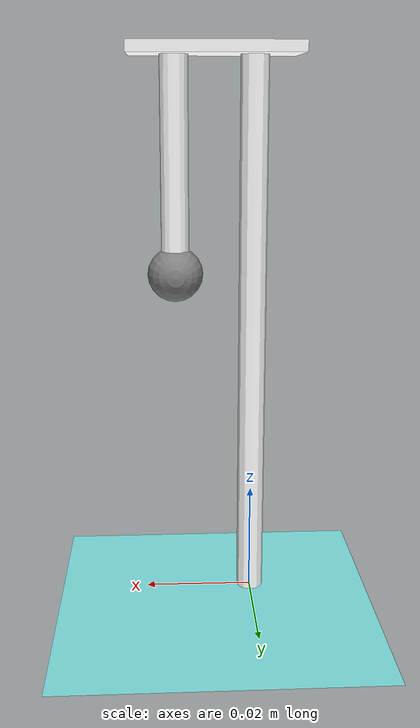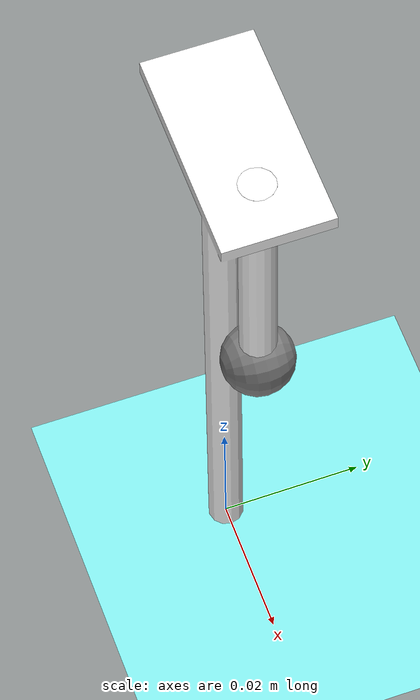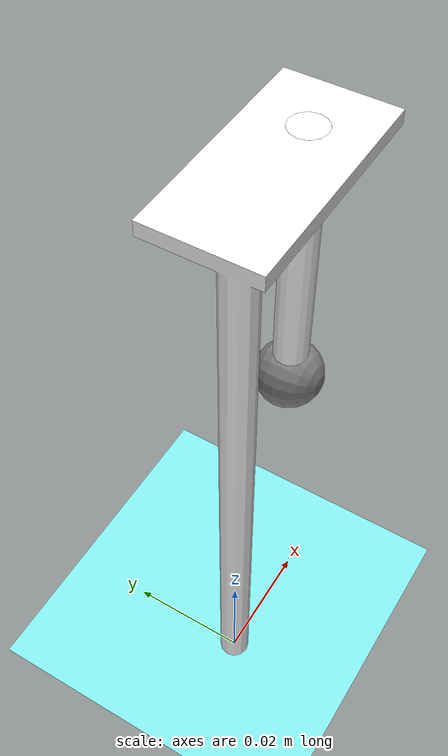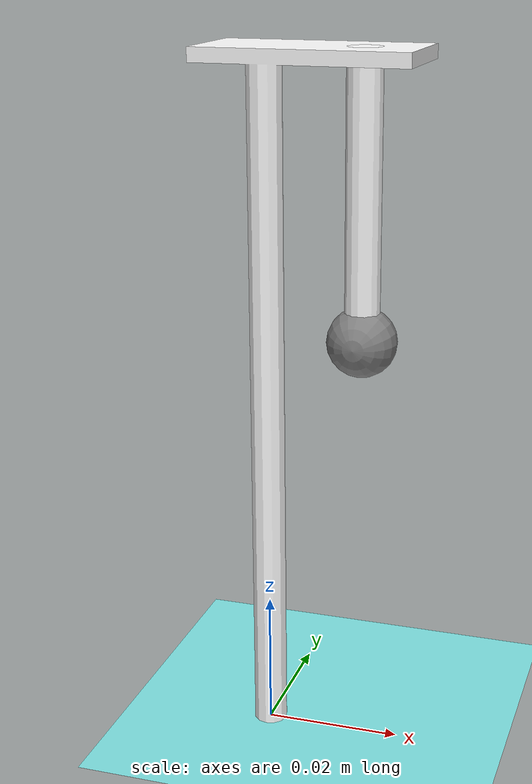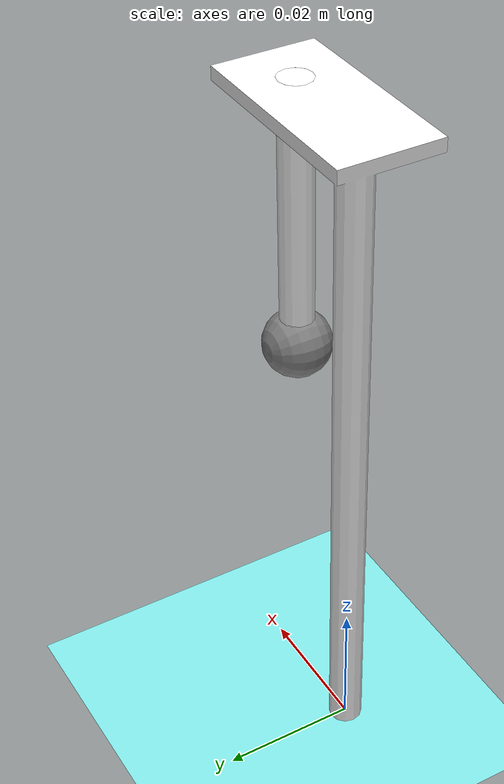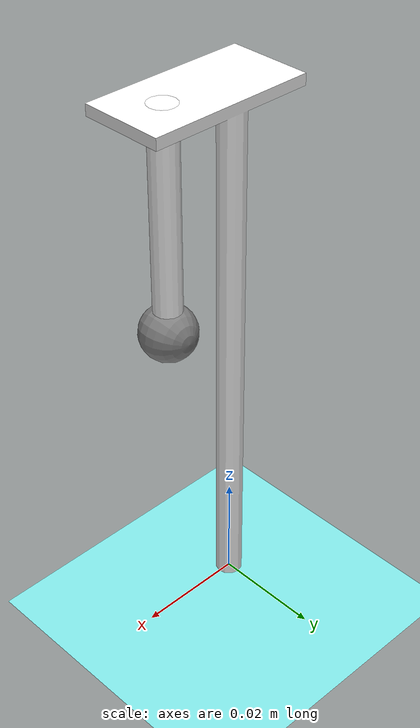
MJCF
<mujoco model="force_control">
     <compiler angle="radian" meshdir="./meshes/" />
    <size njmax="500" nconmax="100" />
    <option gravity='0 0 -9.806' iterations='50' solver='Newton' timestep='0.002'/>

    <default>
        <geom contype="1" conaffinity="1" friction="0.6 0.3 0.3" rgba="0.5 0.6 0.7 1" margin="0.001" group="0"/>

        <light castshadow="false" diffuse="1 1 1"/>
        <motor ctrlrange="-0 200" ctrllimited="true"/>
        <camera fovy="60"/>
        <joint damping="0.01" armature="0.01"/>

    </default>
    <asset>
        <mesh name="base" file="base.STL"/>
        <mesh name="link1" file="link1.STL"/>
    </asset>

    <asset>
        <texture type="skybox" builtin="gradient" rgb1="0.3 0.5 0.7" rgb2="0 0 0" width="512" height="512"/>
        <texture name="plane" type="2d" builtin="flat" rgb1=".2 .3 .4" rgb2=".1 0.15 0.2" width="512" height="512" mark="cross" markrgb="0 0 0"/>
        <material name="plane" reflectance="0.0" texture="plane" texrepeat="3 3" texuniform="true"/>
    </asset>

     <visual>
        <map force="0.1" zfar="30"/>
        <rgba haze="0.15 0.25 0.35 1"/>
        <quality shadowsize="2048"/>
        <global offwidth="800" offheight="800"/>
    </visual>

    <worldbody>
        <light directional="true" diffuse=".8 .8 .8" pos="0 0 10" dir="0 0 -10"/>
        <camera name="track" mode="trackcom" pos="0 -1.3 1.6" xyaxes="1 0 0 0 0.707 0.707"/>
        <geom name='floor' type='plane' conaffinity='1' condim='3' contype='1' rgba="0.5 0.9 0.9 0.1" material='plane' pos='0 0 0' size='0 0 1'/>
        <body name="base" pos="0. 0 0" quat="0 0 0 0">
            <inertial pos="0.02 0 0" quat="0.5 0.5 0.5 0.5" mass="0.05" diaginertia="1.0595e-07 1.0595e-07 2.4544e-09"/>
            <geom name='base' type="mesh" contype="0" conaffinity="0" group="1" rgba="1 1 1 1" mesh="base"/>
            <geom type="mesh" rgba="1 1 1 1" mesh="base"/>

            <body name="link1" pos="0.014 0 0.062" quat="0.499998 0.5 -0.5 0.500002">
                <inertial pos="0.02 0 0" quat="0.5 0.5 0.5 0.5" mass="0.1" diaginertia="1.0595e-07 1.0595e-07 2.4544e-09"/>
                <joint name="joint1" pos="0 0 0" axis="1 0 0" type="slide"/>
                <geom name='link1' type="mesh" contype="0" conaffinity="0" group="1" rgba="1 1 1 1" mesh="link1"/>
                <geom type="mesh" rgba="1 1 1 1" mesh="link1"/>
                <site name="force_sensor_site" pos="0 0 0"/>
            </body>
        </body>
    </worldbody>

    <contact>
        <exclude name="exclude_base_link1" body1="base" body2="link1"/>
        <pair name="pair_base_link1" geom1="floor" geom2="link1"/>
    </contact>

    <actuator>
        <motor name="joint1_motor"   gear="1" joint="joint1"/>
    </actuator>

    <sensor>
        <jointpos name="joint1_pos"    joint="joint1"/>
        <jointvel name="joint1_vel"    joint="joint1"/>

        <touch name="force_sensor_3axis" site="force_sensor_site"/>
    </sensor>

</mujoco>
